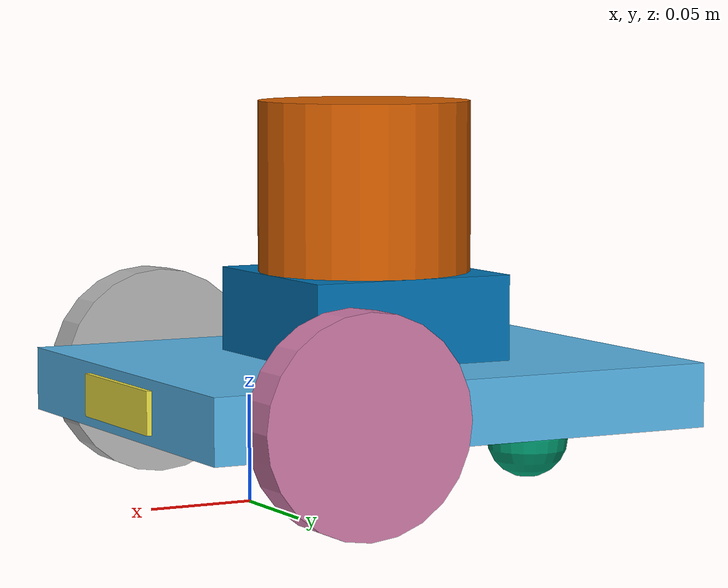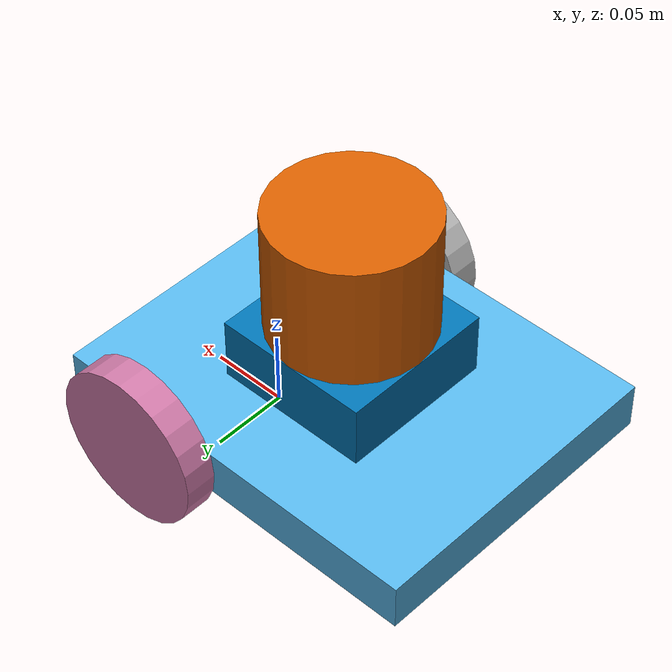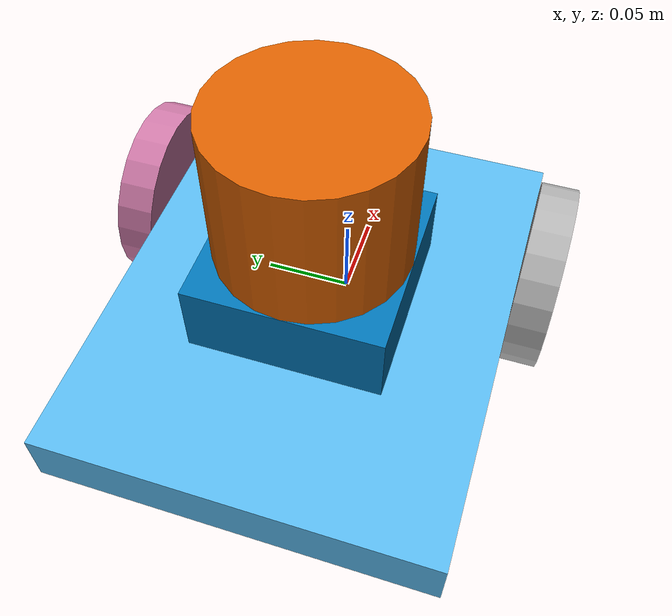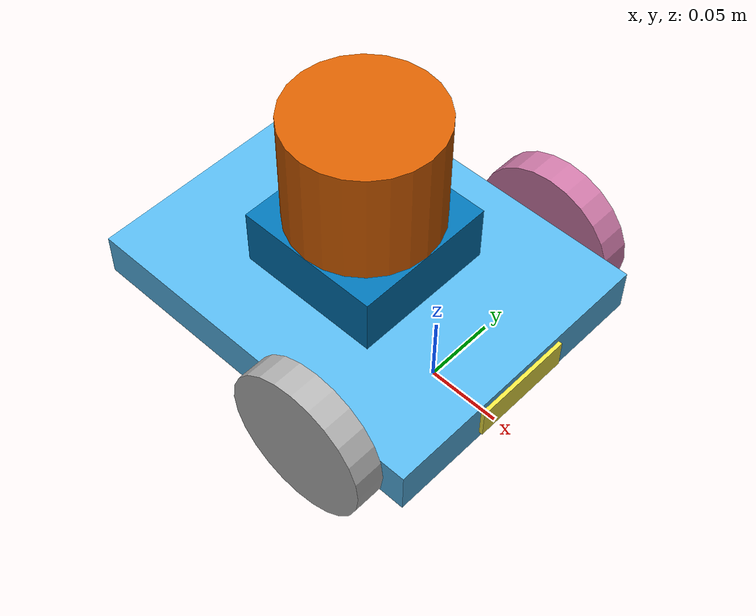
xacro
<?xml version="1.0"?>
<robot name="rotson_robot" xmlns:xacro = "http://www.ros.org/wiki/xacro">

    <!-- include robot body -->
    <xacro:include filename="$(find dd_sim)/models/chassis.xacro"/>
    <xacro:include filename="$(find dd_sim)/models/wheel.xacro"/>

    <!-- show robot chassis body and other that are in chassie file-->
    <xacro:chassis/>

    <!-- Build Left and right wheel from xacro -->
    <xacro:wheel name="left"
        translation="0 ${(wheel_seperation+wheel_length)/2} 0"
        rotation="0 0 0"
        parent="base_link"/>

    <xacro:wheel name="right"
        translation="0 ${(-wheel_seperation-wheel_length)/2} 0"
        rotation="0 0 0"
        parent="base_link"/>
    <!-- Add Differential Drive control plug-in from Gazebo -->
    <!-- Change a little of parameter update rate ,neme of wheel joint,wheel seperation,wheel radius,accel-->
    <gazebo>
        <plugin name="differential_drive_controller" filename="libgazebo_ros_diff_drive.so">

            <!-- Plugin update rate in Hz -->
            <updateRate>${update_rate}</updateRate>

            <!-- Name of left joint, defaults to `left_joint` -->
            <leftJoint>base_link_to_left_wheel</leftJoint>

            <!-- Name of right joint, defaults to `right_joint` -->
            <rightJoint>base_link_to_right_wheel</rightJoint>

            <!-- The distance from the center of one wheel to the other, in meters, defaults to 0.34 m -->
            <wheelSeparation>${wheel_seperation}</wheelSeparation>

            <!-- Diameter of the wheels, in meters, defaults to 0.15 m -->
            <wheelDiameter>${wheel_radius*2}</wheelDiameter>

            <!-- Wheel acceleration, in rad/s^2, defaults to 0.0 rad/s^2 -->
            <wheelAcceleration>0.5</wheelAcceleration>

            <!-- Maximum torque which the wheels can produce, in Nm, defaults to 5 Nm -->
            <wheelTorque>20</wheelTorque>

            <!-- Topic to receive geometry_msgs/Twist message commands, defaults to `cmd_vel` -->
            <commandTopic>cmd_vel</commandTopic>

            <!-- Topic to publish nav_msgs/Odometry messages, defaults to `odom` -->
            <odometryTopic>odom</odometryTopic>

            <!-- Odometry frame, defaults to `odom` -->
            <odometryFrame>odom</odometryFrame>

            <!-- Robot frame to calculate odometry from, defaults to `base_footprint` -->
            <robotBaseFrame>base_footprint</robotBaseFrame>

            <!-- Odometry source, 0 for ENCODER, 1 for WORLD, defaults to WORLD -->
            <odometrySource>1</odometrySource>

            <!-- Set to true to publish transforms for the wheel links, defaults to false -->
            <publishWheelTF>true</publishWheelTF>

            <!-- Set to true to publish transforms for the odometry, defaults to true -->
            <publishOdom>true</publishOdom>

            <!-- Set to true to publish sensor_msgs/JointState on /joint_states for the wheel joints, defaults to false -->
            <publishWheelJointState>true</publishWheelJointState>

            <!-- Set to true to swap right and left wheels, defaults to true -->
            <legacyMode>false</legacyMode>
        </plugin>

    </gazebo>

        <!-- Add Camera plug-in from Gazebo -->
    <gazebo reference="camera_link">
        <sensor type="camera" name="camera1">
            <update_rate>30.0</update_rate>
            <camera name="head">
                <horizontal_fov>1.3962634</horizontal_fov>
                <image>
                    <width>800</width>
                    <height>800</height>
                    <format>R8G8B8</format>
                </image>
                <clip>
                    <near>0.02</near>
                    <far>300</far>
                </clip>
                <noise>
                    <type>gaussian</type>
                    <mean>0.0</mean>
                    <stddev>0.007</stddev>
                </noise>
            </camera>
            <plugin name="camera_controller" filename="libgazebo_ros_camera.so">
                <alwaysOn>true</alwaysOn>
                <updateRate>0.0</updateRate>
                <cameraName>rotson_robot/camera1</cameraName>
                <imageTopicName>image_raw</imageTopicName>
                <cameraInfoTopicName>camera_info</cameraInfoTopicName>
                <frameName>camera_link</frameName>
                <hackBaseline>0.07</hackBaseline>
                <distortionK1>0.0</distortionK1>
                <distortionK2>0.0</distortionK2>
                <distortionK3>0.0</distortionK3>
                <distortionT1>0.0</distortionT1>
                <distortionT2>0.0</distortionT2>
            </plugin>
        </sensor>
    </gazebo>

    <!-- Add Hokuyo Lidar plug-in from Gazebo-->
    <gazebo reference="hokuyo_link">
        <sensor type="gpu_ray" name="head_hokuyo_sensor">
        <pose>0 0 0 0 0 0</pose>
        <visualize>false</visualize>
        <update_rate>40</update_rate>
        <ray>
            <scan>
                <horizontal>
                    <samples>720</samples>
                    <resolution>1</resolution>
                    <min_angle>-1.570796</min_angle>
                    <max_angle>1.570796</max_angle>
                </horizontal>
            </scan>
            <range>
                <min>0.10</min>
                <max>30.0</max>
                <resolution>0.01</resolution>
            </range>
            <noise>
                <type>gaussian</type>
                <mean>0.0</mean>
                <stddev>0.01</stddev>
            </noise>
        </ray>
        <plugin name="gazebo_ros_head_hokuyo_controller" filename="libgazebo_ros_gpu_laser.so">
            <topicName>/rrbot/laser/scan</topicName>
            <frameName>hokuyo_link</frameName>
        </plugin>
        </sensor>
    </gazebo>
</robot>

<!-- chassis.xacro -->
<robot name = "rotson_base" xmlns:xacro = "http://www.ros.org/wiki/xacro">
    <!-- นำค่าในตัวแปรจากไฟล์ property มาใช้ -->
    <xacro:include filename="$(find dd_sim)/models/properties.xacro"/>

    <!-- สร้าง footprint ว่างเปล่าสำหรับเริ่มต้นสร้าง link ถัดไป -->
    <xacro:macro name = "chassis" params ="">
        <link name = "base_footprint"/>
        <joint name = "base_footprint_to_base_link" type = "fixed">
            <parent link="base_footprint"/>
            <child link="base_link"/>
            <origin rpy="0.0 0.0 0.0" xyz="0.0 0.0 0.05"/>
        </joint>
<!-- All inertial parameter for all body nor body from gazebo plug-in are get from solidwork mass properties -->

    <!-- Create Robot Main Baselink -->
        <link name="base_link">
            <inertial>
                <origin xyz="${chassis_com}" rpy="0.0 0.0 0.0"/>
                <mass value="${chassis_mass}"/>
                <inertia ixx="${chassis_Ixx}" ixy="${chassis_Ixy}"
                ixz="${chassis_Ixz}" iyy="${chassis_Iyy}"
                iyz="${chassis_Iyz}" izz="${chassis_Izz}"/>
            </inertial>

            <visual>
                <origin rpy="0.0 0.0 0.0" xyz="-0.06 0.0 0.0"/>
                <geometry>
                    <box size="0.25 ${wheel_seperation} 0.03"/>
                </geometry>
            </visual>
            <collision>
                <origin rpy="0.0 0.0 0.0" xyz="-0.06 0.0 0.0"/>
                <geometry>
                    <box size="0.25 ${wheel_seperation} 0.03"/>
                </geometry>
            </collision>
        </link>
<!-- Build Caster wheel and attach to joint on base link -->
        <joint name="base_link_to_caster" type="fixed">
            <parent link="base_link"/>
            <child link="caster"/>
            <origin rpy="0.0 0.0 0.0" xyz="-0.15 0.0 -0.03"/>
        </joint>

        <link name="caster">
            <inertial>
                <origin xyz="${caster_com}" rpy="0.0 0.0 0.0"/>
                <mass value="${caster_mass}"/>
                <inertia ixx="${caster_Ixx}" ixy="${caster_Ixy}"
                ixz="${caster_Ixz}" iyy="${caster_Iyy}"
                iyz="${caster_Iyz}" izz="${caster_Izz}"/>
            </inertial>
            <!-- Define Co-ef Friction for caster wheel,refer to PP plastic and concrete in dry state -->
            <surface>
                <friction>
                <ode>
                    <mu>0.05</mu>
                    <mu2>0.05</mu2>
                </ode>
                </friction>
            </surface>
            <visual>
                <origin xyz="0.0 0.0 0.0" rpy="0.0 0.0 0.0"/>
                    <geometry>
                        <sphere radius="0.02"/>
                    </geometry>
            </visual>
            <collision>
                <origin xyz="0.0 0.0 0.0" rpy="0.0 0.0 0.0"/>
                    <geometry>
                        <sphere radius="0.02"/>
                    </geometry>
            </collision>
        </link>
<!-- Build Camera -->
        <joint name="camera_joint" type="fixed">
            <axis xyz="0 1 0" />
            <origin xyz="${camera_link} 0 ${camera_high}"
            rpy="0 0 0"/>
            <parent link="base_link"/>
            <child link="camera_link"/>
        </joint>

        <link name="camera_link">
            <collision>
                <origin xyz="0 0 0" rpy="0 0 0"/>
                <geometry>
                    <box size="${camera_size}"/>
                </geometry>
            </collision>

            <visual>
                <origin xyz="0 0 0" rpy="0 0 0"/>
                <geometry>
                    <box size="${camera_size}"/>
                </geometry>
            </visual>

            <inertial>
                <mass value="1e-5" />
                <origin xyz="0 0 0" rpy="0 0 0"/>
                <inertia ixx="1e-6" ixy="0" ixz="0"
                iyy="1e-6" iyz="0" izz="1e-6" />
            </inertial>
        </link>

        <!-- Build base for lidar เพื่อไม่ให้ล้อบัง -->
        <joint name="base_link_to_lidar_base" type="fixed">
            <origin xyz="-0.06 0.0 0.035" rpy="0.0 0.0 0.0"/>
            <parent link="base_link"/>
            <child link="lidar_base"/>
            <axis xyz="0.0 0.0 0.0"/>
        </joint>
        <link name="lidar_base">
            <inertial>
                <origin xyz="0.0 0.0 0.0" rpy="0.0 0.0 0.0"/>
                <mass value="0.408"/>
                <inertia ixx="0.00039440" ixy="0.0" ixz="0.0"
                iyy="0.00039440" iyz="0.0" izz="0.00068"/>
            </inertial>
            <visual name="">
                <origin xyz="0.0 0.0 0.0" rpy="0.0 0.0 0.0"/>
                <geometry>
                    <box size="0.1 0.1 0.04"/>
                </geometry>
            </visual>
            <collision>
                <origin xyz="0.0 0.0 0.0" rpy="0.0 0.0 0.0"/>
                <geometry>
                    <box size="0.1 0.1 0.04"/>
                </geometry>
            </collision>
        </link>

    <!-- Build Lidar -->
        <joint name="hokuyo_joint" type="fixed">
            <axis xyz="0 1 0" />
            <origin xyz="0 0 0.05" rpy="0 0 0"/>
            <parent link="lidar_base"/>
            <child link="hokuyo_link"/>
        </joint>

        <!-- Hokuyo Laser -->
        <link name="hokuyo_link">
            <collision>
                <origin xyz="0 0 0" rpy="0 0 0"/>
                <geometry>
                    <cylinder radius="0.05" length="0.1"/>
                </geometry>
            </collision>

            <visual>
                <origin xyz="0 0 0" rpy="0 0 0"/>
                <geometry>
                    <cylinder radius="0.05" length="0.1"/>
                </geometry>
            </visual>

            <inertial>
                <mass value="1e-5" />
                <origin xyz="0 0 0" rpy="0 0 0"/>
                <inertia ixx="1e-6" ixy="0" ixz="0" iyy="1e-6" iyz="0" izz="1e-6" />
            </inertial>
        </link>

    </xacro:macro>
</robot>

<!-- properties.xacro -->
<robot xmlns:xacro = "http://www.ros.org/wiki/xacro">

    <xacro:property name="pi" value= "3.14"/>

    <!-- Differential Drive Parameter -->
    <xacro:property name="update_rate" value= "5"/>

    <!--Wheel-->
    <xacro:property name="wheel_radius" value= "0.05"/>
    <xacro:property name="wheel_length" value= "0.02"/>
    <xacro:property name="wheel_seperation" value= "0.2"/>
    <xacro:property name="u_max" value= "10.0"/>
    <xacro:property name="v_max" value= "20.0"/>
    <xacro:property name="wheel_joint_damp" value= "0.3"/>
    <!--Wheel Inertia Parameter-->
    <xacro:property name="wheel_com" value= "0 -0.01 0"/>
    <xacro:property name="wheel_mass" value= "0.23"/>
    <xacro:property name="wheel_Ixx" value= "0.00015201"/>
    <xacro:property name="wheel_Ixy" value= "0.0"/>
    <xacro:property name="wheel_Ixz" value= "0.0"/>
    <xacro:property name="wheel_Iyy" value= "0.00028863"/>
    <xacro:property name="wheel_Iyz" value= "0.0"/>
    <xacro:property name="wheel_Izz" value= "0.00015201"/>

    <!--Caster Inertia Parameter-->
    <xacro:property name="caster_com" value= "0.0 0.0 0.0"/>
    <xacro:property name="caster_mass" value= "0.2446"/>
    <xacro:property name="caster_Ixx" value= "0.00003914"/>
    <xacro:property name="caster_Ixy" value= "0.0"/>
    <xacro:property name="caster_Ixz" value= "0.0"/>
    <xacro:property name="caster_Iyy" value= "0.00003914"/>
    <xacro:property name="caster_Iyz" value= "0.0"/>
    <xacro:property name="caster_Izz" value= "0.00003914"/>

    <!--Chassis Inertia Parameter-->
    <xacro:property name="chassis_com" value= "-0.06 0.0 0"/>
    <xacro:property name="chassis_mass" value= "1.53"/>
    <xacro:property name="chassis_Ixx" value= "0.00521475"/>
    <xacro:property name="chassis_Ixy" value= "0.0"/>
    <xacro:property name="chassis_Ixz" value= "0.0"/>
    <xacro:property name="chassis_Iyy" value= "0.00808350"/>
    <xacro:property name="chassis_Iyz" value= "0.0"/>
    <xacro:property name="chassis_Izz" value= "0.01306875"/>

    <!--Camera Property-->
    <xacro:property name="camera_link" value= "0.065"/>
    <xacro:property name="camera_high" value= "0.0"/>
    <xacro:property name="camera_size" value= "0.005 0.07 0.02"/>

    <!--lidar Property-->
</robot>

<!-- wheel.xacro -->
<robot name = "rotson_wheel" xmlns:xacro = "http://www.ros.org/wiki/xacro">

    <xacro:include filename="$(find dd_sim)/models/properties.xacro"/>

    <xacro:macro name = "wheel" params ="name translation rotation parent">

        <link name = "${name}_wheel">
            <inertial>
                <origin xyz="${wheel_com}" rpy="0.0 0.0 0.0"/>
                <mass value="${wheel_mass}"/>
                <inertia ixx="${wheel_Ixx}" ixy="${wheel_Ixy}"
                ixz="${wheel_Ixz}" iyy="${wheel_Iyy}"
                iyz="${wheel_Iyz}" izz="${wheel_Izz}"/>
            </inertial>
            <visual>
                <origin rpy="${pi/2} 0.0 0.0"/>
                <geometry>
                    <cylinder radius="${wheel_radius}" length="${wheel_length}"/>
                </geometry>
            </visual>
            <collision>
                <origin rpy="${pi/2} 0.0 0.0"/>
                <geometry>
                    <cylinder radius="${wheel_radius}" length="${wheel_length}"/>
                </geometry>
            </collision>
        </link>
        <joint name = "base_link_to_${name}_wheel" type = "continuous">
            <parent link="${parent}"/>
            <child link="${name}_wheel"/>
            <origin rpy="${rotation}" xyz="${translation}"/>
            <axis xyz="0 1 0"/>
            <limit effort="${u_max}" velocity="${v_max}"/>
            <dynamics damping="${wheel_joint_damp}"/>
        </joint>

    </xacro:macro>
</robot>
